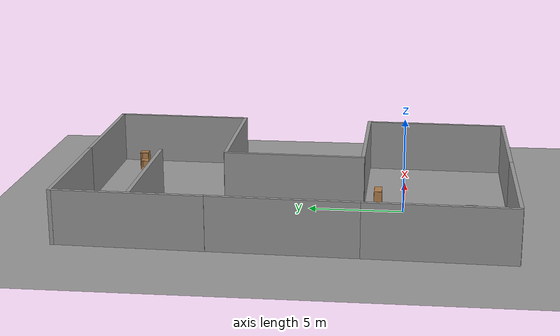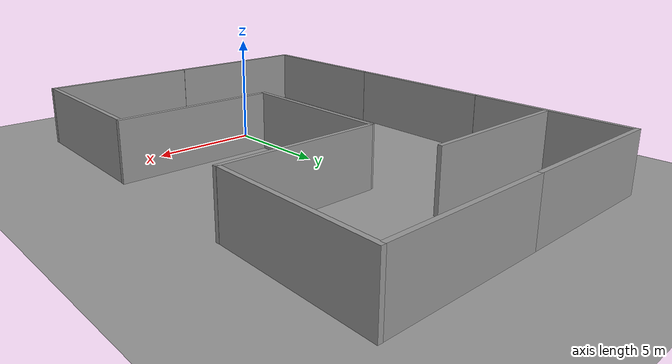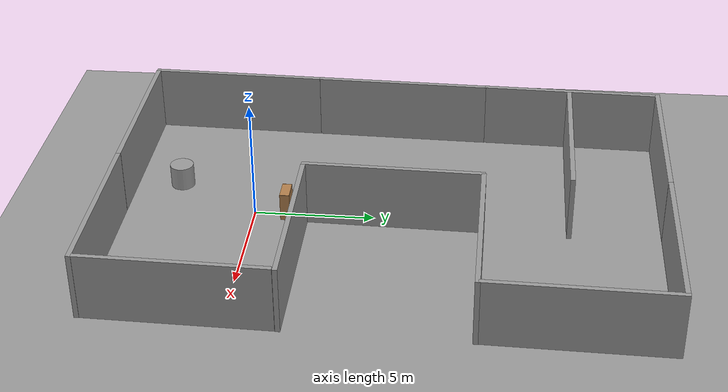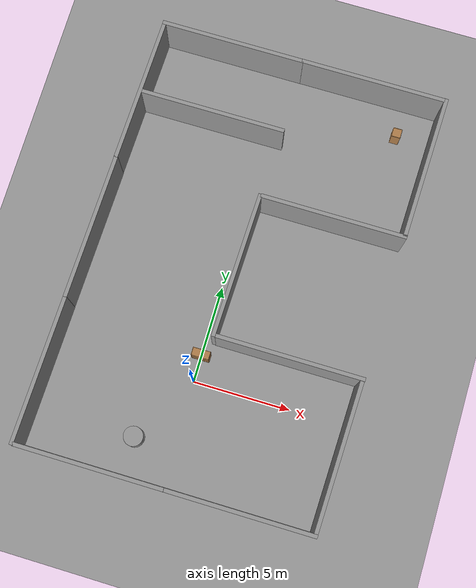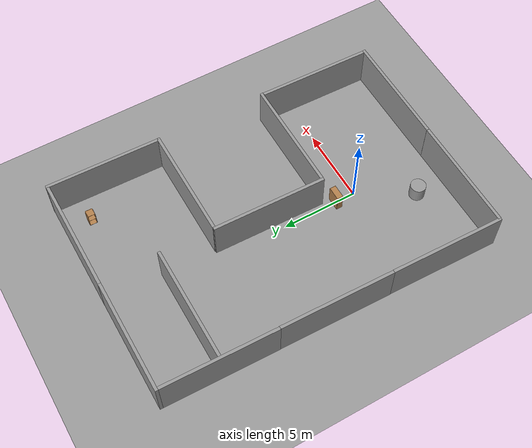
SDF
<sdf version="1.6">
 <world name="default">
  <light name="sun" type="directional">
   <pose>0 0 10 0 -0 0</pose>
   <diffuse>0.8 0.8 0.8 1</diffuse>
   <specular>0.2 0.2 0.2 1</specular>
   <attenuation>
    <range>1000</range>
    <constant>0.9</constant>
    <linear>0.01</linear>
    <quadratic>0.001</quadratic>
   </attenuation>
   <direction>0.5 0.1 -0.9</direction>
  </light>
  <scene><ambient>0.4 0.4 0.4 1</ambient><background>0.7 0.7 0.7 1</background><shadows>1</shadows></scene>
  <physics name="default_physics" default="0" type="ode">
   <max_step_size>0.01</max_step_size>
   <real_time_factor>1</real_time_factor>
   <real_time_update_rate>100</real_time_update_rate>
  </physics>
  <model name="bookshelf">
   <static>1</static>
   <link name="link">
    <inertial><mass>1</mass></inertial>
    <collision name="back">
     <pose>0 0.005 0.6 0 -0 0</pose>
     <geometry><box><size>0.9 0.01 1.2</size></box></geometry>
    </collision>
    <visual name="visual1">
     <pose>0 0.005 0.6 0 -0 0</pose>
     <geometry><box><size>0.9 0.01 1.2</size></box></geometry>
     <material>
      <script><uri>file://media/materials/scripts/gazebo.material</uri><name>Gazebo/Wood</name></script>
     </material>
    </visual>
    <collision name="left_side">
     <pose>0.45 -0.195 0.6 0 -0 0</pose>
     <geometry><box><size>0.02 0.4 1.2</size></box></geometry>
    </collision>
    <visual name="visual2">
     <pose>0.45 -0.195 0.6 0 -0 0</pose>
     <geometry><box><size>0.02 0.4 1.2</size></box></geometry>
     <material>
      <script><uri>file://media/materials/scripts/gazebo.material</uri><name>Gazebo/Wood</name></script>
     </material>
    </visual>
    <collision name="right_side">
     <pose>-0.45 -0.195 0.6 0 -0 0</pose>
     <geometry><box><size>0.02 0.4 1.2</size></box></geometry>
    </collision>
    <visual name="visual3">
     <pose>-0.45 -0.195 0.6 0 -0 0</pose>
     <geometry><box><size>0.02 0.4 1.2</size></box></geometry>
     <material>
      <script><uri>file://media/materials/scripts/gazebo.material</uri><name>Gazebo/Wood</name></script>
     </material>
    </visual>
    <collision name="bottom">
     <pose>0 -0.195 0.03 0 -0 0</pose>
     <geometry><box><size>0.88 0.4 0.06</size></box></geometry>
    </collision>
    <visual name="visual4">
     <pose>0 -0.195 0.03 0 -0 0</pose>
     <geometry><box><size>0.88 0.4 0.06</size></box></geometry>
     <material>
      <script><uri>file://media/materials/scripts/gazebo.material</uri><name>Gazebo/Wood</name></script>
     </material>
    </visual>
    <collision name="top">
     <pose>0 -0.195 1.19 0 -0 0</pose>
     <geometry><box><size>0.88 0.4 0.02</size></box></geometry>
    </collision>
    <visual name="visual5">
     <pose>0 -0.195 1.19 0 -0 0</pose>
     <geometry><box><size>0.88 0.4 0.02</size></box></geometry>
     <material>
      <script><uri>file://media/materials/scripts/gazebo.material</uri><name>Gazebo/Wood</name></script>
     </material>
    </visual>
    <collision name="low_shelf">
     <pose>0 -0.195 0.43 0 -0 0</pose>
     <geometry><box><size>0.88 0.4 0.02</size></box></geometry>
    </collision>
    <visual name="visual6">
     <pose>0 -0.195 0.43 0 -0 0</pose>
     <geometry><box><size>0.88 0.4 0.02</size></box></geometry>
     <material>
      <script><uri>file://media/materials/scripts/gazebo.material</uri><name>Gazebo/Wood</name></script>
     </material>
    </visual>
    <collision name="high_shelf">
     <pose>0 -0.195 0.8 0 -0 0</pose>
     <geometry><box><size>0.88 0.4 0.02</size></box></geometry>
    </collision>
    <visual name="visual7">
     <pose>0 -0.195 0.8 0 -0 0</pose>
     <geometry><box><size>0.88 0.4 0.02</size></box></geometry>
     <material>
      <script><uri>file://media/materials/scripts/gazebo.material</uri><name>Gazebo/Wood</name></script>
     </material>
    </visual>
    <velocity_decay><linear>0</linear><angular>0</angular></velocity_decay>
   </link>
   <pose>0 1.53026 0 0 -0 0</pose>
  </model>
  <model name="ground_plane_0">
   <static>1</static>
   <link name="link">
    <collision name="collision">
     <geometry><plane><normal>0 0 1</normal><size>100 100</size></plane></geometry>
     <surface><friction><ode><mu>100</mu><mu2>50</mu2></ode></friction></surface>
    </collision>
    <visual name="visual">
     <cast_shadows>0</cast_shadows>
     <geometry><plane><normal>0 0 1</normal><size>100 100</size></plane></geometry>
     <material>
      <script><uri>file://media/materials/scripts/gazebo.material</uri><name>Gazebo/Grey</name></script>
     </material>
    </visual>
    <velocity_decay><linear>0</linear><angular>0</angular></velocity_decay>
   </link>
   <pose>0.497681 0 0 0 -0 0</pose>
  </model>
  <model name="unit_cylinder_1">
   <pose>-2 -3.4888 0.49912 0 -0 0</pose>
   <link name="link">
    <inertial>
     <mass>1</mass>
     <inertia><ixx>1</ixx><ixy>0</ixy><ixz>0</ixz><iyy>1</iyy><iyz>0</iyz><izz>1</izz></inertia>
    </inertial>
    <collision name="collision">
     <geometry><cylinder><radius>0.5</radius><length>1</length></cylinder></geometry>
    </collision>
    <visual name="visual">
     <geometry><cylinder><radius>0.5</radius><length>1</length></cylinder></geometry>
     <material>
      <script><uri>file://media/materials/scripts/gazebo.material</uri><name>Gazebo/Grey</name></script>
     </material>
    </visual>
    <velocity_decay><linear>0</linear><angular>0</angular></velocity_decay>
   </link>
   <static>0</static>
  </model>
  <gravity>0 0 -9.8</gravity>
  <magnetic_field>6e-06 2.3e-05 -4.2e-05</magnetic_field>
  <atmosphere type="adiabatic"/>
  <spherical_coordinates>
   <surface_model>EARTH_WGS84</surface_model>
   <latitude_deg>0</latitude_deg>
   <longitude_deg>0</longitude_deg>
   <elevation>0</elevation>
   <heading_deg>0</heading_deg>
  </spherical_coordinates>
  <model name="grey_wall">
   <static>1</static>
   <link name="link">
    <pose>0 0 1.4 0 -0 0</pose>
    <collision name="collision"><geometry><box><size>7.5 0.2 2.8</size></box></geometry></collision>
    <visual name="visual">
     <cast_shadows>0</cast_shadows>
     <geometry><box><size>7.5 0.2 2.8</size></box></geometry>
     <material>
      <script>
       <uri>model://grey_wall/materials/scripts</uri>
       <uri>model://grey_wall/materials/textures</uri>
       <name>vrc/grey_wall</name>
      </script>
     </material>
    </visual>
   </link>
   <pose>-3.441 -5.50973 0 0 -0 0</pose>
  </model>
  <model name="grey_wall_clone">
   <static>1</static>
   <link name="link">
    <pose>0 0 1.4 0 -0 0</pose>
    <collision name="collision"><geometry><box><size>7.5 0.2 2.8</size></box></geometry></collision>
    <visual name="visual">
     <cast_shadows>0</cast_shadows>
     <geometry><box><size>7.5 0.2 2.8</size></box></geometry>
     <material>
      <script>
       <uri>model://grey_wall/materials/scripts</uri>
       <uri>model://grey_wall/materials/textures</uri>
       <name>vrc/grey_wall</name>
      </script>
     </material>
    </visual>
   </link>
   <pose>4.06545 -5.51079 0 0 -0 0</pose>
  </model>
  <model name="grey_wall_clone_clone">
   <static>1</static>
   <link name="link">
    <pose>0 0 1.4 0 -0 0</pose>
    <collision name="collision"><geometry><box><size>7.5 0.2 2.8</size></box></geometry></collision>
    <visual name="visual">
     <cast_shadows>0</cast_shadows>
     <geometry><box><size>7.5 0.2 2.8</size></box></geometry>
     <material>
      <script>
       <uri>model://grey_wall/materials/scripts</uri>
       <uri>model://grey_wall/materials/textures</uri>
       <name>vrc/grey_wall</name>
      </script>
     </material>
    </visual>
   </link>
   <pose>4.28027 2.17839 0 0 -0 0</pose>
  </model>
  <model name="grey_wall_clone_clone_0">
   <static>1</static>
   <link name="link">
    <pose>0 0 1.4 0 -0 0</pose>
    <collision name="collision"><geometry><box><size>7.5 0.2 2.8</size></box></geometry></collision>
    <visual name="visual">
     <cast_shadows>0</cast_shadows>
     <geometry><box><size>7.5 0.2 2.8</size></box></geometry>
     <material>
      <script>
       <uri>model://grey_wall/materials/scripts</uri>
       <uri>model://grey_wall/materials/textures</uri>
       <name>vrc/grey_wall</name>
      </script>
     </material>
    </visual>
   </link>
   <pose>7.80751 -1.68108 0 0 -0 1.54421</pose>
  </model>
  <model name="grey_wall_clone_clone_0_clone">
   <static>1</static>
   <link name="link">
    <pose>0 0 1.4 0 -0 0</pose>
    <collision name="collision"><geometry><box><size>7.5 0.2 2.8</size></box></geometry></collision>
    <visual name="visual">
     <cast_shadows>0</cast_shadows>
     <geometry><box><size>7.5 0.2 2.8</size></box></geometry>
     <material>
      <script>
       <uri>model://grey_wall/materials/scripts</uri>
       <uri>model://grey_wall/materials/textures</uri>
       <name>vrc/grey_wall</name>
      </script>
     </material>
    </visual>
   </link>
   <pose>-7.12979 -1.83395 0 0 -0 1.54421</pose>
  </model>
  <model name="grey_wall_clone_clone_0_clone_clone">
   <static>1</static>
   <link name="link">
    <pose>0 0 1.4 0 -0 0</pose>
    <collision name="collision"><geometry><box><size>7.5 0.2 2.8</size></box></geometry></collision>
    <visual name="visual">
     <cast_shadows>0</cast_shadows>
     <geometry><box><size>7.5 0.2 2.8</size></box></geometry>
     <material>
      <script>
       <uri>model://grey_wall/materials/scripts</uri>
       <uri>model://grey_wall/materials/textures</uri>
       <name>vrc/grey_wall</name>
      </script>
     </material>
    </visual>
   </link>
   <pose>-6.93686 5.64992 0 0 -0 1.54421</pose>
  </model>
  <model name="grey_wall_clone_clone_0_clone_clone_0">
   <static>1</static>
   <link name="link">
    <pose>0 0 1.4 0 -0 0</pose>
    <collision name="collision"><geometry><box><size>7.5 0.2 2.8</size></box></geometry></collision>
    <visual name="visual">
     <cast_shadows>0</cast_shadows>
     <geometry><box><size>7.5 0.2 2.8</size></box></geometry>
     <material>
      <script>
       <uri>model://grey_wall/materials/scripts</uri>
       <uri>model://grey_wall/materials/textures</uri>
       <name>vrc/grey_wall</name>
      </script>
     </material>
    </visual>
   </link>
   <pose>0.525376 5.84452 0 0 -0 1.54421</pose>
  </model>
  <model name="grey_wall_clone_clone_0_clone_clone_1">
   <static>1</static>
   <link name="link">
    <pose>0 0 1.4 0 -0 0</pose>
    <collision name="collision"><geometry><box><size>7.5 0.2 2.8</size></box></geometry></collision>
    <visual name="visual">
     <cast_shadows>0</cast_shadows>
     <geometry><box><size>7.5 0.2 2.8</size></box></geometry>
     <material>
      <script>
       <uri>model://grey_wall/materials/scripts</uri>
       <uri>model://grey_wall/materials/textures</uri>
       <name>vrc/grey_wall</name>
      </script>
     </material>
    </visual>
   </link>
   <pose>-6.75441 13.1148 0 0 -0 1.54421</pose>
  </model>
  <model name="grey_wall_clone_0">
   <static>1</static>
   <link name="link">
    <pose>0 0 1.4 0 -0 0</pose>
    <collision name="collision"><geometry><box><size>7.5 0.2 2.8</size></box></geometry></collision>
    <visual name="visual">
     <cast_shadows>0</cast_shadows>
     <geometry><box><size>7.5 0.2 2.8</size></box></geometry>
     <material>
      <script>
       <uri>model://grey_wall/materials/scripts</uri>
       <uri>model://grey_wall/materials/textures</uri>
       <name>vrc/grey_wall</name>
      </script>
     </material>
    </visual>
   </link>
   <pose>-2.908 13.0909 0 0 -0 0</pose>
  </model>
  <model name="grey_wall_clone_2">
   <static>1</static>
   <link name="link">
    <pose>0 0 1.4 0 -0 0</pose>
    <collision name="collision"><geometry><box><size>7.5 0.2 2.8</size></box></geometry></collision>
    <visual name="visual">
     <cast_shadows>0</cast_shadows>
     <geometry><box><size>7.5 0.2 2.8</size></box></geometry>
     <material>
      <script>
       <uri>model://grey_wall/materials/scripts</uri>
       <uri>model://grey_wall/materials/textures</uri>
       <name>vrc/grey_wall</name>
      </script>
     </material>
    </visual>
   </link>
   <pose>-3.00632 16.9533 0 0 -0 0</pose>
  </model>
  <model name="grey_wall_clone_3">
   <static>1</static>
   <link name="link">
    <pose>0 0 1.4 0 -0 0</pose>
    <collision name="collision"><geometry><box><size>7.5 0.2 2.8</size></box></geometry></collision>
    <visual name="visual">
     <cast_shadows>0</cast_shadows>
     <geometry><box><size>7.5 0.2 2.8</size></box></geometry>
     <material>
      <script>
       <uri>model://grey_wall/materials/scripts</uri>
       <uri>model://grey_wall/materials/textures</uri>
       <name>vrc/grey_wall</name>
      </script>
     </material>
    </visual>
   </link>
   <pose>4.41733 16.9574 0 0 -0 0</pose>
  </model>
  <model name="grey_wall_clone_clone_0_clone_clone_0_clone">
   <static>1</static>
   <link name="link">
    <pose>0 0 1.4 0 -0 0</pose>
    <collision name="collision"><geometry><box><size>7.5 0.2 2.8</size></box></geometry></collision>
    <visual name="visual">
     <cast_shadows>0</cast_shadows>
     <geometry><box><size>7.5 0.2 2.8</size></box></geometry>
     <material>
      <script>
       <uri>model://grey_wall/materials/scripts</uri>
       <uri>model://grey_wall/materials/textures</uri>
       <name>vrc/grey_wall</name>
      </script>
     </material>
    </visual>
   </link>
   <pose>8.14208 13.3125 0 0 -0 1.54421</pose>
  </model>
  <model name="grey_wall_clone_clone_clone">
   <static>1</static>
   <link name="link">
    <pose>0 0 1.4 0 -0 0</pose>
    <collision name="collision"><geometry><box><size>7.5 0.2 2.8</size></box></geometry></collision>
    <visual name="visual">
     <cast_shadows>0</cast_shadows>
     <geometry><box><size>7.5 0.2 2.8</size></box></geometry>
     <material>
      <script>
       <uri>model://grey_wall/materials/scripts</uri>
       <uri>model://grey_wall/materials/textures</uri>
       <name>vrc/grey_wall</name>
      </script>
     </material>
    </visual>
   </link>
   <pose>4.40326 9.52869 0 0 -0 0</pose>
  </model>
  <model name="cabinet">
   <static>1</static>
   <link name="cabinet_bottom_plate">
    <inertial>
     <pose>0 0 -1 0 -0 0</pose>
     <inertia><ixx>2.05</ixx><ixy>0</ixy><ixz>0</ixz><iyy>2.05</iyy><iyz>0</iyz><izz>2.05</izz></inertia>
     <mass>25</mass>
    </inertial>
    <collision name="cabinet_bottom_plate_geom">
     <pose>0 0 0.01 0 -0 0</pose>
     <geometry><box><size>0.45 0.45 0.02</size></box></geometry>
    </collision>
    <visual name="cabinet_bottom_plate_geom_visual">
     <pose>0 0 0.01 0 -0 0</pose>
     <geometry><box><size>0.45 0.45 0.02</size></box></geometry>
     <material>
      <script><uri>file://media/materials/scripts/gazebo.material</uri><name>Gazebo/Wood</name></script>
     </material>
    </visual>
    <collision name="cabinet_bottom_plate_geom_cabinet_back_plate">
     <pose>0.235 0 0.51 0 -0 0</pose>
     <geometry><box><size>0.02 0.45 1.02</size></box></geometry>
    </collision>
    <visual name="cabinet_bottom_plate_geom_cabinet_back_plate_visual">
     <pose>0.235 0 0.51 0 -0 0</pose>
     <geometry><box><size>0.02 0.45 1.02</size></box></geometry>
     <material>
      <script><uri>file://media/materials/scripts/gazebo.material</uri><name>Gazebo/Wood</name></script>
     </material>
    </visual>
    <collision name="cabinet_bottom_plate_geom_cabinet_left_plate">
     <pose>0 0.235 0.51 0 -0 0</pose>
     <geometry><box><size>0.45 0.02 1.02</size></box></geometry>
    </collision>
    <visual name="cabinet_bottom_plate_geom_cabinet_left_plate_visual">
     <pose>0 0.235 0.51 0 -0 0</pose>
     <geometry><box><size>0.45 0.02 1.02</size></box></geometry>
     <material>
      <script><uri>file://media/materials/scripts/gazebo.material</uri><name>Gazebo/Wood</name></script>
     </material>
    </visual>
    <collision name="cabinet_bottom_plate_geom_cabinet_middle_plate">
     <pose>0 0 0.51 0 -0 0</pose>
     <geometry><box><size>0.45 0.45 0.02</size></box></geometry>
    </collision>
    <visual name="cabinet_bottom_plate_geom_cabinet_middle_plate_visual">
     <pose>0 0 0.51 0 -0 0</pose>
     <geometry><box><size>0.45 0.45 0.02</size></box></geometry>
     <material>
      <script><uri>file://media/materials/scripts/gazebo.material</uri><name>Gazebo/Wood</name></script>
     </material>
    </visual>
    <collision name="cabinet_bottom_plate_geom_cabinet_right_plate">
     <pose>0 -0.235 0.51 0 -0 0</pose>
     <geometry><box><size>0.45 0.02 1.02</size></box></geometry>
    </collision>
    <visual name="cabinet_bottom_plate_geom_cabinet_right_plate_visual">
     <pose>0 -0.235 0.51 0 -0 0</pose>
     <geometry><box><size>0.45 0.02 1.02</size></box></geometry>
     <material>
      <script><uri>file://media/materials/scripts/gazebo.material</uri><name>Gazebo/Wood</name></script>
     </material>
    </visual>
    <collision name="cabinet_bottom_plate_geom_cabinet_top_plate">
     <pose>0 0 1.01 0 -0 0</pose>
     <geometry><box><size>0.45 0.45 0.02</size></box></geometry>
    </collision>
    <visual name="cabinet_bottom_plate_geom_cabinet_top_plate_visual">
     <pose>0 0 1.01 0 -0 0</pose>
     <geometry><box><size>0.45 0.45 0.02</size></box></geometry>
     <material>
      <script><uri>file://media/materials/scripts/gazebo.material</uri><name>Gazebo/Wood</name></script>
     </material>
    </visual>
   </link>
   <pose>6.37669 15.2747 0 0 -0 0</pose>
  </model>
 </world>
</sdf>
